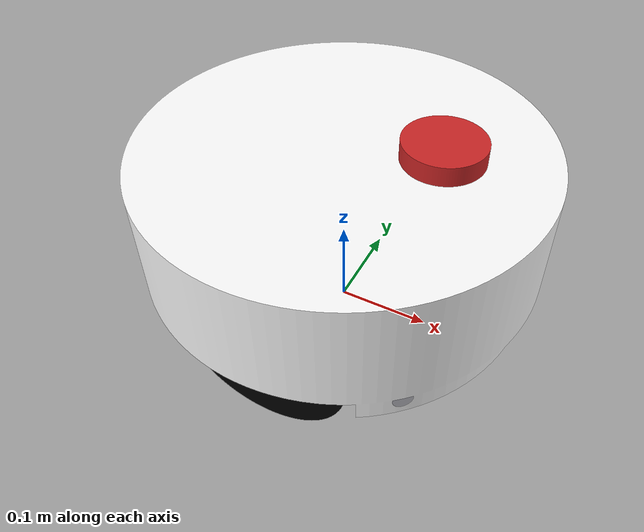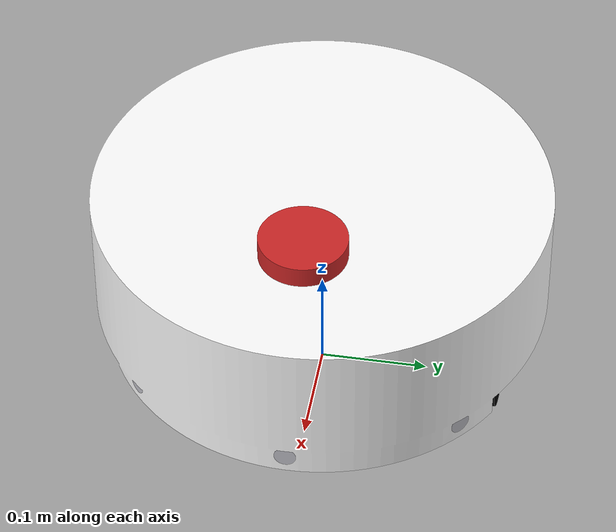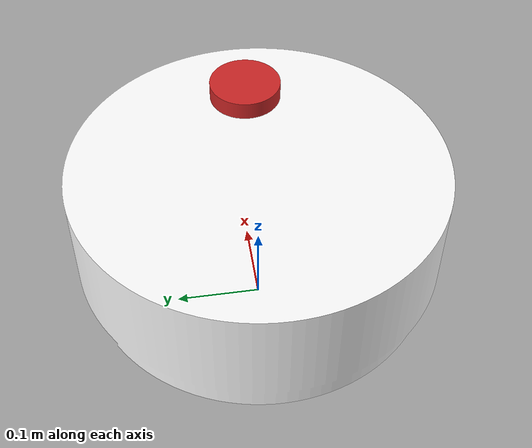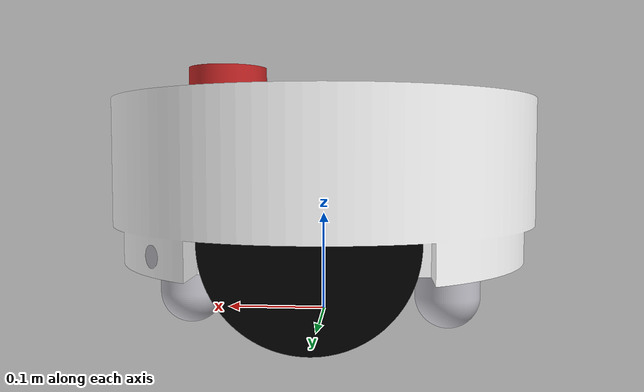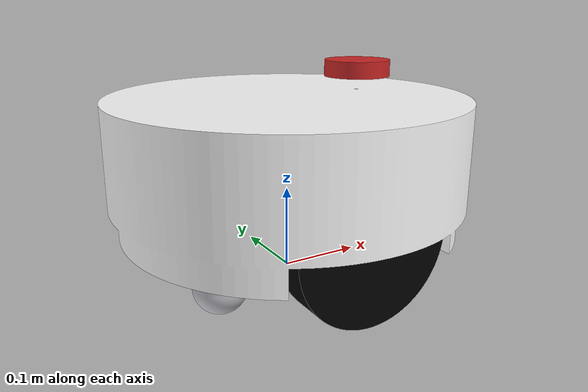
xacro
<?xml version="1.0"?>
<robot xmlns:xacro="http://www.ros.org/wiki/xacro"  name="amry">

    <xacro:arg name="use_ros2_control" default="true"/>
    <xacro:arg name="sim_mode" default="false"/>

    <xacro:include filename="robot_core.xacro" />

    <xacro:if value="$(arg use_ros2_control)">
        <xacro:include filename="ros2_control.xacro" />
    </xacro:if>
    <xacro:unless value="$(arg use_ros2_control)">
        <xacro:include filename="gazebo_control.xacro" />
    </xacro:unless>
    <xacro:include filename="lidar.xacro" />
    <xacro:include filename="ultrasonic.xacro" />

</robot>

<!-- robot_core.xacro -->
<robot xmlns:xacro="http://www.ros.org/wiki/xacro">

<xacro:include filename="$(find my_amr)/description/materials.xacro" />

<xacro:property name="wheel_radius" value="0.09"/>
<xacro:property name="wheel_thickness" value="0.04"/>
<xacro:property name="wheel_mass" value="0.8"/>
<xacro:property name="caster_wheel_radius" value="0.045"/>
<xacro:property name="caster_wheel_mass" value="0.2"/>

<joint name="base_footprint_joint" type="fixed">
  <parent link="base_link"/>
  <child link="base_footprint"/>
  <origin xyz="0 0 0" rpy="0 0 0"/>
</joint>

<link name="base_footprint">
</link>

<link name="base_link">
  <inertial>
    <origin xyz="-1.608079915230958e-05 -2.1937365419521377e-08 0.13897786839067583" rpy="0 0 0"/>
    <mass value="5.26629601620555"/>
    <inertia ixx="0.212732" iyy="0.303577" izz="0.429345" ixy="0.0" iyz="-0.0" ixz="-2.1e-05"/>
  </inertial>
  <visual>
    <origin xyz="0 0 0" rpy="0 0 0"/>
    <geometry>
      <mesh filename="file://$(find my_amr)/meshes/base_link.stl" scale="0.001 0.001 0.001"/>
    </geometry>
    <material name="white"/>
  </visual>
  <collision>
    <origin xyz="0 0 0" rpy="0 0 0"/>
    <geometry>
      <mesh filename="file://$(find my_amr)/meshes/base_link.stl" scale="0.001 0.001 0.001"/>
    </geometry>
  </collision>
</link>

<gazebo reference="base_link">
  <material>Gazebo/White</material>
</gazebo>

<link name="left_wheel_1">
  <inertial>
    <origin xyz="2.220446049250313e-18 0.020000000000000046 -1.3877787807814457e-17" rpy="0 0 0"/>
    <mass value="0.9466246983796763"/>
    <inertia ixx="0.002043" iyy="0.003834" izz="0.002043" ixy="0.0" iyz="-0.0" ixz="0.0"/>
  </inertial>
  <visual>
    <origin xyz="-0.0 -0.133205 -0.09" rpy="0 0 0"/>
    <geometry>
      <mesh filename="file://$(find my_amr)/meshes/left_wheel_1.stl" scale="0.001 0.001 0.001"/>
    </geometry>
    <material name="black"/>
  </visual>
  <collision>
    <geometry>
        <sphere radius="${wheel_radius}"/>
    </geometry>
  </collision>
</link>

<gazebo reference="left_wheel_1">
  <material>Gazebo/Black</material>
  </gazebo>

<link name="right_wheel_1">
  <inertial>
    <origin xyz="0.0 -0.020000000000000046 0.0" rpy="0 0 0"/>
    <mass value="0.9466246983796763"/>
    <inertia ixx="0.002043" iyy="0.003834" izz="0.002043" ixy="-0.0" iyz="0.0" ixz="-0.0"/>
  </inertial>
  <visual>
    <origin xyz="-0.0 0.133205 -0.09" rpy="0 0 0"/>
    <geometry>
      <mesh filename="file://$(find my_amr)/meshes/right_wheel_1.stl" scale="0.001 0.001 0.001"/>
    </geometry>
    <material name="black"/>
  </visual>
  <collision>
    <geometry>
        <sphere radius="${wheel_radius}"/>
    </geometry>
  </collision>
</link>

<gazebo reference="right_wheel_1">
  <material>Gazebo/Black</material>
</gazebo>

<link name="caster2_1">
  <inertial>
    <origin xyz="-2.7755575615628914e-17 0.0 -0.024282671784564218" rpy="0 0 0"/>
    <mass value="0.2"/>
    <inertia ixx="0.00044" iyy="0.00044" izz="0.000435" ixy="-0.0" iyz="0.0" ixz="-0.0"/>
  </inertial>
  <visual>
    <origin xyz="0.12 -0.07 -0.057513" rpy="0 0 0"/>
    <geometry>
      <mesh filename="file://$(find my_amr)/meshes/caster2_1.stl" scale="0.001 0.001 0.001"/>
    </geometry>
    <material name="silver"/>
  </visual>
  <collision>
    <origin xyz="0 0 -0.012" rpy="0 0 0"/>
    <geometry>
        <sphere radius="${caster_wheel_radius}"/>
    </geometry>
  </collision>
</link>

<gazebo reference="caster2_1">
  <material>Gazebo/Black</material>
  <mu1 value="0.001"/>
  <mu2 value="0.001"/>
  </gazebo>

<link name="caster1_1">
  <inertial>
    <origin xyz="-2.7755575615628914e-17 0.0 -0.024282671784564225" rpy="0 0 0"/>
    <mass value="0.2"/>
    <inertia ixx="0.00044" iyy="0.00044" izz="0.000435" ixy="0.0" iyz="-0.0" ixz="0.0"/>
  </inertial>
  <visual>
    <origin xyz="0.12 0.065 -0.057513" rpy="0 0 0"/>
    <geometry>
      <mesh filename="file://$(find my_amr)/meshes/caster1_1.stl" scale="0.001 0.001 0.001"/>
    </geometry>
    <material name="silver"/>
  </visual>
  <collision>
    <origin xyz="0 0 -0.012" rpy="0 0 0"/>
    <geometry>
        <sphere radius="${caster_wheel_radius}"/>
    </geometry>
  </collision>
</link>

<gazebo reference="caster1_1">
  <material>Gazebo/Black</material>
  <mu1 value="0.001"/>
  <mu2 value="0.001"/>
  </gazebo>

<link name="caster3_1">
  <inertial>
    <origin xyz="0.0 0.0 -0.024282671784564225" rpy="0 0 0"/>
    <mass value="0.2"/>
    <inertia ixx="0.00044" iyy="0.00044" izz="0.000435" ixy="0.0" iyz="-0.0" ixz="-0.0"/>
  </inertial>
  <visual>
    <origin xyz="-0.12 0.065 -0.057513" rpy="0 0 0"/>
    <geometry>
      <mesh filename="file://$(find my_amr)/meshes/caster3_1.stl" scale="0.001 0.001 0.001"/>
    </geometry>
    <material name="silver"/>
  </visual>
  <collision>
    <origin xyz="0 0 -0.012" rpy="0 0 0"/>
    <geometry>
        <sphere radius="${caster_wheel_radius}"/>
    </geometry>
  </collision>
</link>

<gazebo reference="caster3_1">
  <material>Gazebo/Black</material>
  <mu1 value="0.001"/>
  <mu2 value="0.001"/>
  </gazebo>

<link name="caster4_1">
  <inertial>
    <origin xyz="0.0 0.0 -0.024282671784564218" rpy="0 0 0"/>
    <mass value="0.2"/>
    <inertia ixx="0.00044" iyy="0.00044" izz="0.000435" ixy="0.0" iyz="0.0" ixz="-0.0"/>
  </inertial>
  <visual>
    <origin xyz="-0.12 -0.07 -0.059513" rpy="0 0 0"/>
    <geometry>
      <mesh filename="file://$(find my_amr)/meshes/caster4_1.stl" scale="0.001 0.001 0.001"/>
    </geometry>
    <material name="silver"/>
  </visual>
  <collision>
    <origin xyz="0 0 -0.012" rpy="0 0 0"/>
    <geometry>
        <sphere radius="${caster_wheel_radius}"/>
    </geometry>
  </collision>
</link>

<gazebo reference="caster4_1">
  <material>Gazebo/Black</material>
  <mu1 value="0.001"/>
  <mu2 value="0.001"/>
  </gazebo>

<joint name="left_wheel_joint" type="continuous">
  <origin xyz="0.0 0.133205 0.09" rpy="0 0 0"/>
  <parent link="base_link"/>
  <child link="left_wheel_1"/>
  <axis xyz="0.0 1.0 0.0"/>
</joint>

<joint name="right_wheel_joint" type="continuous">
  <origin xyz="0.0 -0.133205 0.09" rpy="0 0 0"/>
  <parent link="base_link"/>
  <child link="right_wheel_1"/>
  <axis xyz="0.0 1.0 0.0"/>
</joint>

<joint name="castor2_joint" type="fixed">
  <origin xyz="-0.12 0.07 0.057513" rpy="0 0 0"/>
  <parent link="base_link"/>
  <child link="caster2_1"/>
</joint>

<joint name="castor1_joint" type="fixed">
  <origin xyz="-0.12 -0.065 0.057513" rpy="0 0 0"/>
  <parent link="base_link"/>
  <child link="caster1_1"/>
</joint>

<joint name="castor3_joint" type="fixed">
  <origin xyz="0.12 -0.065 0.057513" rpy="0 0 0"/>
  <parent link="base_link"/>
  <child link="caster3_1"/>
</joint>

<joint name="castor4_joint" type="fixed">
  <origin xyz="0.12 0.07 0.059513" rpy="0 0 0"/>
  <parent link="base_link"/>
  <child link="caster4_1"/>
</joint>

</robot>

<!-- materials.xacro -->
<robot xmlns:xacro="http://www.ros.org/wiki/xacro" >

<material name="white">
  <color rgba="01.00 01.00 01.00 1.000"/>
</material>

<material name="blue">
  <color rgba="00.00 00.00 00.00 1.000"/>
</material>

<material name="black">
  <color rgba="00.00 00.00 00.00 1.000"/>
</material>

<material name="grey">
  <color rgba="00.40 00.40 00.40 1.000"/>
</material>

</robot>

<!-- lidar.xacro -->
<robot xmlns:xacro="http://www.ros.org/wiki/xacro" >

    <joint name="laser_joint" type="fixed">
        <origin xyz="0.1 0.0 0.23" rpy="0 0 0"/>
        <parent link="base_link"/>
        <child link="laser_link_1"/>
    </joint>

    <link name="laser_link_1">
        <inertial>
          <origin xyz="0.0 -4.566226147409843e-18 0.010000000000000009" rpy="0 0 0"/>
          <mass value="0.10656282280976578"/>
          <inertia ixx="4.6e-05" iyy="4.6e-05" izz="8.5e-05" ixy="0.0" iyz="-0.0" ixz="-0.0"/>
        </inertial>
        <visual>
          <origin xyz="-0.1 -0.0 -0.213513" rpy="0 0 0"/>
          <geometry>
            <mesh filename="file://$(find my_amr)/meshes/laser_link_1.stl" scale="0.001 0.001 0.001"/>
          </geometry>
          <material name="red"/>
        </visual>
        <collision>
          <origin xyz="-0.1 -0.0 -0.213513" rpy="0 0 0"/>
          <geometry>
            <mesh filename="file://$(find my_amr)/meshes/laser_link_1.stl" scale="0.001 0.001 0.001"/>
          </geometry>
        </collision>
    </link>

    <gazebo reference="laser_link_1">
        <material>Gazebo/Red</material>

        <sensor name="laser" type="ray">
            <pose> 0 0 0 0 0 0 </pose>
            <visualize>true</visualize>
            <update_rate>10</update_rate>
            <ray>
                <scan>
                    <horizontal>
                        <samples>360</samples>
                        <min_angle>-3.14</min_angle>
                        <max_angle>3.14</max_angle>
                    </horizontal>
                </scan>
                <range>
                    <min>0.3</min>
                    <max>12</max>
                </range>
            </ray>
            <plugin name="laser_controller" filename="libgazebo_ros_ray_sensor.so">
                <ros>
                    <argument>~/out:=scan</argument>
                </ros>
                <output_type>sensor_msgs/LaserScan</output_type>
                <frame_name>laser_link_1</frame_name>
            </plugin>
        </sensor>
    </gazebo>

</robot>

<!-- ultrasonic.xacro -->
<robot xmlns:xacro="http://www.ros.org/wiki/xacro" >

    <joint name="ultrasonic_right_joint" type="fixed">
        <origin xyz="0.13299 -0.146689 0.075" rpy="0 0 0"/>
        <parent link="base_link"/>
        <child link="ultrasonic_right_1"/>
    </joint>

    <joint name="ultrasonic_front_joint" type="fixed">
        <origin xyz="0.198 0.0 0.075" rpy="0 0 0"/>
        <parent link="base_link"/>
        <child link="ultrasonic_front_1"/>
    </joint>

    <joint name="ultrasonic_left_joint" type="fixed">
        <origin xyz="0.13299 0.146689 0.075" rpy="0 0 0"/>
        <parent link="base_link"/>
        <child link="ultrasonic_left_1"/>
    </joint>

    <link name="ultrasonic_right_1">
        <inertial>
          <origin xyz="0.0006713306094823235 -0.000741148544342124 1.3877787807814457e-17" rpy="0 0 0"/>
          <mass value="0.004932300466136072"/>
          <inertia ixx="0.0" iyy="0.0" izz="0.0" ixy="-0.0" iyz="-0.0" ixz="-0.0"/>
        </inertial>
        <visual>
          <origin xyz="-0.13299 0.146689 -0.075" rpy="0 0 0"/>
          <geometry>
            <mesh filename="file://$(find my_amr)/meshes/ultrasonic_right_1.stl" scale="0.001 0.001 0.001"/>
          </geometry>
          <material name="silver"/>
        </visual>
        <collision>
          <origin xyz="-0.13299 0.146689 -0.075" rpy="0 0 0"/>
          <geometry>
            <mesh filename="file://$(find my_amr)/meshes/ultrasonic_right_1.stl" scale="0.001 0.001 0.001"/>
          </geometry>
        </collision>
      </link>

      <link name="ultrasonic_front_1">
        <inertial>
          <origin xyz="0.0010000000000000009 -3.5339496460705866e-17 0.0" rpy="0 0 0"/>
          <mass value="0.004932300466135958"/>
          <inertia ixx="0.0" iyy="0.0" izz="0.0" ixy="-0.0" iyz="-0.0" ixz="-0.0"/>
        </inertial>
        <visual>
          <origin xyz="-0.198 0.0 -0.075" rpy="0 0 0"/>
          <geometry>
            <mesh filename="file://$(find my_amr)/meshes/ultrasonic_front_1.stl" scale="0.001 0.001 0.001"/>
          </geometry>
          <material name="silver"/>
        </visual>
        <collision>
          <origin xyz="-0.198 0.0 -0.075" rpy="0 0 0"/>
          <geometry>
            <mesh filename="file://$(find my_amr)/meshes/ultrasonic_front_1.stl" scale="0.001 0.001 0.001"/>
          </geometry>
        </collision>
      </link>

      <link name="ultrasonic_left_1">
        <inertial>
          <origin xyz="0.0006713306080746162 0.0007411485449778099 -2.7755575615628914e-17" rpy="0 0 0"/>
          <mass value="0.004932300466136081"/>
          <inertia ixx="0.0" iyy="0.0" izz="0.0" ixy="0.0" iyz="-0.0" ixz="-0.0"/>
        </inertial>
        <visual>
          <origin xyz="-0.13299 -0.146689 -0.075" rpy="0 0 0"/>
          <geometry>
            <mesh filename="file://$(find my_amr)/meshes/ultrasonic_left_1.stl" scale="0.001 0.001 0.001"/>
          </geometry>
          <material name="silver"/>
        </visual>
        <collision>
          <origin xyz="-0.13299 -0.146689 -0.075" rpy="0 0 0"/>
          <geometry>
            <mesh filename="file://$(find my_amr)/meshes/ultrasonic_left_1.stl" scale="0.001 0.001 0.001"/>
          </geometry>
        </collision>
      </link>

      <gazebo reference="ultrasonic_right_1">
        <material>Gazebo/Silver</material>
      </gazebo>

      <gazebo reference="ultrasonic_front_1">
        <material>Gazebo/Silver</material>
      </gazebo>

      <gazebo reference="ultrasonic_left_1">
        <material>Gazebo/Silver</material>
      </gazebo>

</robot>
